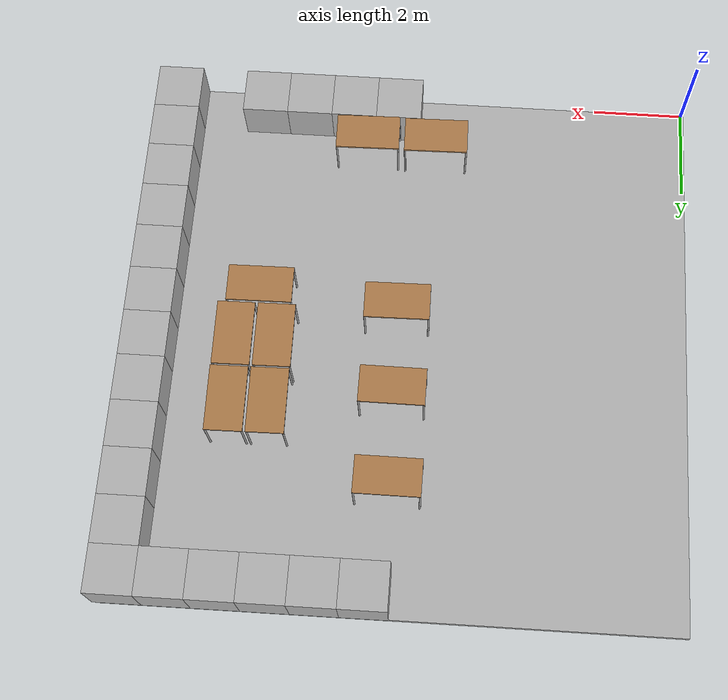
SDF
<sdf version="1.6">
 <world name="default">
  <model name="floor">
   <pose>5.94261 5.9862 -0.0625 0 -0 0</pose>
   <static>1</static>
   <link name="link">
    <collision name="collision"><geometry><box><size>12 12 0.125</size></box></geometry></collision>
    <visual name="visual"><geometry><box><size>12 12 0.125</size></box></geometry></visual>
   </link>
  </model>
  <model name="box_6_0">
   <pose>6.5 0.5 0.5 0 -0 0</pose>
   <static>1</static>
   <link name="link">
    <collision name="collision"><geometry><box><size>1 1 1</size></box></geometry></collision>
    <visual name="visual"><geometry><box><size>1 1 1</size></box></geometry></visual>
   </link>
  </model>
  <model name="box_6_11">
   <pose>6.5 11.5 0.5 0 -0 0</pose>
   <static>1</static>
   <link name="link">
    <collision name="collision"><geometry><box><size>1 1 1</size></box></geometry></collision>
    <visual name="visual"><geometry><box><size>1 1 1</size></box></geometry></visual>
   </link>
  </model>
  <model name="box_7_0">
   <pose>7.5 0.5 0.5 0 -0 0</pose>
   <static>1</static>
   <link name="link">
    <collision name="collision"><geometry><box><size>1 1 1</size></box></geometry></collision>
    <visual name="visual"><geometry><box><size>1 1 1</size></box></geometry></visual>
   </link>
  </model>
  <model name="box_7_11">
   <pose>7.5 11.5 0.5 0 -0 0</pose>
   <static>1</static>
   <link name="link">
    <collision name="collision"><geometry><box><size>1 1 1</size></box></geometry></collision>
    <visual name="visual"><geometry><box><size>1 1 1</size></box></geometry></visual>
   </link>
  </model>
  <model name="box_8_0">
   <pose>8.5 0.5 0.5 0 -0 0</pose>
   <static>1</static>
   <link name="link">
    <collision name="collision"><geometry><box><size>1 1 1</size></box></geometry></collision>
    <visual name="visual"><geometry><box><size>1 1 1</size></box></geometry></visual>
   </link>
  </model>
  <model name="box_8_11">
   <pose>8.5 11.5 0.5 0 -0 0</pose>
   <static>1</static>
   <link name="link">
    <collision name="collision"><geometry><box><size>1 1 1</size></box></geometry></collision>
    <visual name="visual"><geometry><box><size>1 1 1</size></box></geometry></visual>
   </link>
  </model>
  <model name="box_9_0">
   <pose>9.5 0.5 0.5 0 -0 0</pose>
   <static>1</static>
   <link name="link">
    <collision name="collision"><geometry><box><size>1 1 1</size></box></geometry></collision>
    <visual name="visual"><geometry><box><size>1 1 1</size></box></geometry></visual>
   </link>
  </model>
  <model name="box_9_11">
   <pose>9.5 11.5 0.5 0 -0 0</pose>
   <static>1</static>
   <link name="link">
    <collision name="collision"><geometry><box><size>1 1 1</size></box></geometry></collision>
    <visual name="visual"><geometry><box><size>1 1 1</size></box></geometry></visual>
   </link>
  </model>
  <model name="box_10_11">
   <pose>10.5 11.5 0.5 0 -0 0</pose>
   <static>1</static>
   <link name="link">
    <collision name="collision"><geometry><box><size>1 1 1</size></box></geometry></collision>
    <visual name="visual"><geometry><box><size>1 1 1</size></box></geometry></visual>
   </link>
  </model>
  <model name="box_11_0">
   <pose>11.5 0.5 0.5 0 -0 0</pose>
   <static>1</static>
   <link name="link">
    <collision name="collision"><geometry><box><size>1 1 1</size></box></geometry></collision>
    <visual name="visual"><geometry><box><size>1 1 1</size></box></geometry></visual>
   </link>
  </model>
  <model name="box_11_1">
   <pose>11.5 1.5 0.5 0 -0 0</pose>
   <static>1</static>
   <link name="link">
    <collision name="collision"><geometry><box><size>1 1 1</size></box></geometry></collision>
    <visual name="visual"><geometry><box><size>1 1 1</size></box></geometry></visual>
   </link>
  </model>
  <model name="box_11_2">
   <pose>11.5 2.5 0.5 0 -0 0</pose>
   <static>1</static>
   <link name="link">
    <collision name="collision"><geometry><box><size>1 1 1</size></box></geometry></collision>
    <visual name="visual"><geometry><box><size>1 1 1</size></box></geometry></visual>
   </link>
  </model>
  <model name="box_11_3">
   <pose>11.5 3.5 0.5 0 -0 0</pose>
   <static>1</static>
   <link name="link">
    <collision name="collision"><geometry><box><size>1 1 1</size></box></geometry></collision>
    <visual name="visual"><geometry><box><size>1 1 1</size></box></geometry></visual>
   </link>
  </model>
  <model name="box_11_4">
   <pose>11.5 4.5 0.5 0 -0 0</pose>
   <static>1</static>
   <link name="link">
    <collision name="collision"><geometry><box><size>1 1 1</size></box></geometry></collision>
    <visual name="visual"><geometry><box><size>1 1 1</size></box></geometry></visual>
   </link>
  </model>
  <model name="box_11_5">
   <pose>11.5 5.5 0.5 0 -0 0</pose>
   <static>1</static>
   <link name="link">
    <collision name="collision"><geometry><box><size>1 1 1</size></box></geometry></collision>
    <visual name="visual"><geometry><box><size>1 1 1</size></box></geometry></visual>
   </link>
  </model>
  <model name="box_11_6">
   <pose>11.5 6.5 0.5 0 -0 0</pose>
   <static>1</static>
   <link name="link">
    <collision name="collision"><geometry><box><size>1 1 1</size></box></geometry></collision>
    <visual name="visual"><geometry><box><size>1 1 1</size></box></geometry></visual>
   </link>
  </model>
  <model name="box_11_7">
   <pose>11.5 7.5 0.5 0 -0 0</pose>
   <static>1</static>
   <link name="link">
    <collision name="collision"><geometry><box><size>1 1 1</size></box></geometry></collision>
    <visual name="visual"><geometry><box><size>1 1 1</size></box></geometry></visual>
   </link>
  </model>
  <model name="box_11_8">
   <pose>11.5 8.5 0.5 0 -0 0</pose>
   <static>1</static>
   <link name="link">
    <collision name="collision"><geometry><box><size>1 1 1</size></box></geometry></collision>
    <visual name="visual"><geometry><box><size>1 1 1</size></box></geometry></visual>
   </link>
  </model>
  <model name="box_11_9">
   <pose>11.5 9.5 0.5 0 -0 0</pose>
   <static>1</static>
   <link name="link">
    <collision name="collision"><geometry><box><size>1 1 1</size></box></geometry></collision>
    <visual name="visual"><geometry><box><size>1 1 1</size></box></geometry></visual>
   </link>
  </model>
  <model name="box_11_10">
   <pose>11.5 10.5 0.5 0 -0 0</pose>
   <static>1</static>
   <link name="link">
    <collision name="collision"><geometry><box><size>1 1 1</size></box></geometry></collision>
    <visual name="visual"><geometry><box><size>1 1 1</size></box></geometry></visual>
   </link>
  </model>
  <model name="box_11_11">
   <pose>11.5 11.5 0.5 0 -0 0</pose>
   <static>1</static>
   <link name="link">
    <collision name="collision"><geometry><box><size>1 1 1</size></box></geometry></collision>
    <visual name="visual"><geometry><box><size>1 1 1</size></box></geometry></visual>
   </link>
  </model>
  <model name="table">
   <static>0</static>
   <link name="link">
    <collision name="surface">
     <pose>0 0 1 0 -0 0</pose>
     <geometry><box><size>1.5 0.8 0.03</size></box></geometry>
     <surface><friction><ode><mu>0.6</mu><mu2>0.6</mu2></ode></friction></surface>
    </collision>
    <visual name="visual1">
     <pose>0 0 1 0 -0 0</pose>
     <geometry><box><size>1.4 0.8 0.04</size></box></geometry>
     <material>
      <script><uri>file://media/materials/scripts/gazebo.material</uri><name>Gazebo/Wood</name></script>
     </material>
    </visual>
    <collision name="front_left_leg">
     <pose>0.68 0.38 0.5 0 -0 0</pose>
     <geometry><cylinder><radius>0.02</radius><length>1</length></cylinder></geometry>
    </collision>
    <visual name="front_left_leg">
     <pose>0.68 0.38 0.5 0 -0 0</pose>
     <geometry><cylinder><radius>0.02</radius><length>1</length></cylinder></geometry>
     <material>
      <script><uri>file://media/materials/scripts/gazebo.material</uri><name>Gazebo/Grey</name></script>
     </material>
    </visual>
    <collision name="front_right_leg">
     <pose>0.68 -0.38 0.5 0 -0 0</pose>
     <geometry><cylinder><radius>0.02</radius><length>1</length></cylinder></geometry>
    </collision>
    <visual name="front_right_leg">
     <pose>0.68 -0.38 0.5 0 -0 0</pose>
     <geometry><cylinder><radius>0.02</radius><length>1</length></cylinder></geometry>
     <material>
      <script><uri>file://media/materials/scripts/gazebo.material</uri><name>Gazebo/Grey</name></script>
     </material>
    </visual>
    <collision name="back_right_leg">
     <pose>-0.68 -0.38 0.5 0 -0 0</pose>
     <geometry><cylinder><radius>0.02</radius><length>1</length></cylinder></geometry>
    </collision>
    <visual name="back_right_leg">
     <pose>-0.68 -0.38 0.5 0 -0 0</pose>
     <geometry><cylinder><radius>0.02</radius><length>1</length></cylinder></geometry>
     <material>
      <script><uri>file://media/materials/scripts/gazebo.material</uri><name>Gazebo/Grey</name></script>
     </material>
    </visual>
    <collision name="back_left_leg">
     <pose>-0.68 0.38 0.5 0 -0 0</pose>
     <geometry><cylinder><radius>0.02</radius><length>1</length></cylinder></geometry>
    </collision>
    <visual name="back_left_leg">
     <pose>-0.68 0.38 0.5 0 -0 0</pose>
     <geometry><cylinder><radius>0.02</radius><length>1</length></cylinder></geometry>
     <material>
      <script><uri>file://media/materials/scripts/gazebo.material</uri><name>Gazebo/Grey</name></script>
     </material>
    </visual>
    <inertial>
     <inertia><ixx>1</ixx><ixy>0</ixy><ixz>0</ixz><iyy>1</iyy><iyz>0</iyz><izz>1</izz></inertia>
     <mass>1</mass>
    </inertial>
   </link>
   <pose>9.1788 5.23214 -5e-06 1e-06 -0 0.010262</pose>
  </model>
  <model name="table_0">
   <static>0</static>
   <link name="link">
    <collision name="surface">
     <pose>0 0 1 0 -0 0</pose>
     <geometry><box><size>1.5 0.8 0.03</size></box></geometry>
     <surface><friction><ode><mu>0.6</mu><mu2>0.6</mu2></ode></friction></surface>
    </collision>
    <visual name="visual1">
     <pose>0 0 1 0 -0 0</pose>
     <geometry><box><size>1.4 0.8 0.04</size></box></geometry>
     <material>
      <script><uri>file://media/materials/scripts/gazebo.material</uri><name>Gazebo/Wood</name></script>
     </material>
    </visual>
    <collision name="front_left_leg">
     <pose>0.68 0.38 0.5 0 -0 0</pose>
     <geometry><cylinder><radius>0.02</radius><length>1</length></cylinder></geometry>
    </collision>
    <visual name="front_left_leg">
     <pose>0.68 0.38 0.5 0 -0 0</pose>
     <geometry><cylinder><radius>0.02</radius><length>1</length></cylinder></geometry>
     <material>
      <script><uri>file://media/materials/scripts/gazebo.material</uri><name>Gazebo/Grey</name></script>
     </material>
    </visual>
    <collision name="front_right_leg">
     <pose>0.68 -0.38 0.5 0 -0 0</pose>
     <geometry><cylinder><radius>0.02</radius><length>1</length></cylinder></geometry>
    </collision>
    <visual name="front_right_leg">
     <pose>0.68 -0.38 0.5 0 -0 0</pose>
     <geometry><cylinder><radius>0.02</radius><length>1</length></cylinder></geometry>
     <material>
      <script><uri>file://media/materials/scripts/gazebo.material</uri><name>Gazebo/Grey</name></script>
     </material>
    </visual>
    <collision name="back_right_leg">
     <pose>-0.68 -0.38 0.5 0 -0 0</pose>
     <geometry><cylinder><radius>0.02</radius><length>1</length></cylinder></geometry>
    </collision>
    <visual name="back_right_leg">
     <pose>-0.68 -0.38 0.5 0 -0 0</pose>
     <geometry><cylinder><radius>0.02</radius><length>1</length></cylinder></geometry>
     <material>
      <script><uri>file://media/materials/scripts/gazebo.material</uri><name>Gazebo/Grey</name></script>
     </material>
    </visual>
    <collision name="back_left_leg">
     <pose>-0.68 0.38 0.5 0 -0 0</pose>
     <geometry><cylinder><radius>0.02</radius><length>1</length></cylinder></geometry>
    </collision>
    <visual name="back_left_leg">
     <pose>-0.68 0.38 0.5 0 -0 0</pose>
     <geometry><cylinder><radius>0.02</radius><length>1</length></cylinder></geometry>
     <material>
      <script><uri>file://media/materials/scripts/gazebo.material</uri><name>Gazebo/Grey</name></script>
     </material>
    </visual>
    <inertial>
     <inertia><ixx>1</ixx><ixy>0</ixy><ixz>0</ixz><iyy>1</iyy><iyz>0</iyz><izz>1</izz></inertia>
     <mass>1</mass>
    </inertial>
   </link>
   <pose>9.62627 6.3868 -9e-06 0 -1e-06 -1.56053</pose>
  </model>
  <model name="table_0_clone">
   <static>0</static>
   <link name="link">
    <collision name="surface">
     <pose>0 0 1 0 -0 0</pose>
     <geometry><box><size>1.5 0.8 0.03</size></box></geometry>
     <surface><friction><ode><mu>0.6</mu><mu2>0.6</mu2></ode></friction></surface>
    </collision>
    <visual name="visual1">
     <pose>0 0 1 0 -0 0</pose>
     <geometry><box><size>1.4 0.8 0.04</size></box></geometry>
     <material>
      <script><uri>file://media/materials/scripts/gazebo.material</uri><name>Gazebo/Wood</name></script>
     </material>
    </visual>
    <collision name="front_left_leg">
     <pose>0.68 0.38 0.5 0 -0 0</pose>
     <geometry><cylinder><radius>0.02</radius><length>1</length></cylinder></geometry>
    </collision>
    <visual name="front_left_leg">
     <pose>0.68 0.38 0.5 0 -0 0</pose>
     <geometry><cylinder><radius>0.02</radius><length>1</length></cylinder></geometry>
     <material>
      <script><uri>file://media/materials/scripts/gazebo.material</uri><name>Gazebo/Grey</name></script>
     </material>
    </visual>
    <collision name="front_right_leg">
     <pose>0.68 -0.38 0.5 0 -0 0</pose>
     <geometry><cylinder><radius>0.02</radius><length>1</length></cylinder></geometry>
    </collision>
    <visual name="front_right_leg">
     <pose>0.68 -0.38 0.5 0 -0 0</pose>
     <geometry><cylinder><radius>0.02</radius><length>1</length></cylinder></geometry>
     <material>
      <script><uri>file://media/materials/scripts/gazebo.material</uri><name>Gazebo/Grey</name></script>
     </material>
    </visual>
    <collision name="back_right_leg">
     <pose>-0.68 -0.38 0.5 0 -0 0</pose>
     <geometry><cylinder><radius>0.02</radius><length>1</length></cylinder></geometry>
    </collision>
    <visual name="back_right_leg">
     <pose>-0.68 -0.38 0.5 0 -0 0</pose>
     <geometry><cylinder><radius>0.02</radius><length>1</length></cylinder></geometry>
     <material>
      <script><uri>file://media/materials/scripts/gazebo.material</uri><name>Gazebo/Grey</name></script>
     </material>
    </visual>
    <collision name="back_left_leg">
     <pose>-0.68 0.38 0.5 0 -0 0</pose>
     <geometry><cylinder><radius>0.02</radius><length>1</length></cylinder></geometry>
    </collision>
    <visual name="back_left_leg">
     <pose>-0.68 0.38 0.5 0 -0 0</pose>
     <geometry><cylinder><radius>0.02</radius><length>1</length></cylinder></geometry>
     <material>
      <script><uri>file://media/materials/scripts/gazebo.material</uri><name>Gazebo/Grey</name></script>
     </material>
    </visual>
    <inertial>
     <inertia><ixx>1</ixx><ixy>0</ixy><ixz>0</ixz><iyy>1</iyy><iyz>0</iyz><izz>1</izz></inertia>
     <mass>1</mass>
    </inertial>
   </link>
   <pose>8.76764 6.37799 -2e-06 0 -4e-06 -1.56053</pose>
  </model>
  <model name="table_0_clone_clone">
   <static>0</static>
   <link name="link">
    <collision name="surface">
     <pose>0 0 1 0 -0 0</pose>
     <geometry><box><size>1.5 0.8 0.03</size></box></geometry>
     <surface><friction><ode><mu>0.6</mu><mu2>0.6</mu2></ode></friction></surface>
    </collision>
    <visual name="visual1">
     <pose>0 0 1 0 -0 0</pose>
     <geometry><box><size>1.4 0.8 0.04</size></box></geometry>
     <material>
      <script><uri>file://media/materials/scripts/gazebo.material</uri><name>Gazebo/Wood</name></script>
     </material>
    </visual>
    <collision name="front_left_leg">
     <pose>0.68 0.38 0.5 0 -0 0</pose>
     <geometry><cylinder><radius>0.02</radius><length>1</length></cylinder></geometry>
    </collision>
    <visual name="front_left_leg">
     <pose>0.68 0.38 0.5 0 -0 0</pose>
     <geometry><cylinder><radius>0.02</radius><length>1</length></cylinder></geometry>
     <material>
      <script><uri>file://media/materials/scripts/gazebo.material</uri><name>Gazebo/Grey</name></script>
     </material>
    </visual>
    <collision name="front_right_leg">
     <pose>0.68 -0.38 0.5 0 -0 0</pose>
     <geometry><cylinder><radius>0.02</radius><length>1</length></cylinder></geometry>
    </collision>
    <visual name="front_right_leg">
     <pose>0.68 -0.38 0.5 0 -0 0</pose>
     <geometry><cylinder><radius>0.02</radius><length>1</length></cylinder></geometry>
     <material>
      <script><uri>file://media/materials/scripts/gazebo.material</uri><name>Gazebo/Grey</name></script>
     </material>
    </visual>
    <collision name="back_right_leg">
     <pose>-0.68 -0.38 0.5 0 -0 0</pose>
     <geometry><cylinder><radius>0.02</radius><length>1</length></cylinder></geometry>
    </collision>
    <visual name="back_right_leg">
     <pose>-0.68 -0.38 0.5 0 -0 0</pose>
     <geometry><cylinder><radius>0.02</radius><length>1</length></cylinder></geometry>
     <material>
      <script><uri>file://media/materials/scripts/gazebo.material</uri><name>Gazebo/Grey</name></script>
     </material>
    </visual>
    <collision name="back_left_leg">
     <pose>-0.68 0.38 0.5 0 -0 0</pose>
     <geometry><cylinder><radius>0.02</radius><length>1</length></cylinder></geometry>
    </collision>
    <visual name="back_left_leg">
     <pose>-0.68 0.38 0.5 0 -0 0</pose>
     <geometry><cylinder><radius>0.02</radius><length>1</length></cylinder></geometry>
     <material>
      <script><uri>file://media/materials/scripts/gazebo.material</uri><name>Gazebo/Grey</name></script>
     </material>
    </visual>
    <inertial>
     <inertia><ixx>1</ixx><ixy>0</ixy><ixz>0</ixz><iyy>1</iyy><iyz>0</iyz><izz>1</izz></inertia>
     <mass>1</mass>
    </inertial>
   </link>
   <pose>9.61817 7.81602 0.015107 -0 -0.021585 -1.56053</pose>
  </model>
  <model name="table_0_clone_clone_0">
   <static>0</static>
   <link name="link">
    <collision name="surface">
     <pose>0 0 1 0 -0 0</pose>
     <geometry><box><size>1.5 0.8 0.03</size></box></geometry>
     <surface><friction><ode><mu>0.6</mu><mu2>0.6</mu2></ode></friction></surface>
    </collision>
    <visual name="visual1">
     <pose>0 0 1 0 -0 0</pose>
     <geometry><box><size>1.4 0.8 0.04</size></box></geometry>
     <material>
      <script><uri>file://media/materials/scripts/gazebo.material</uri><name>Gazebo/Wood</name></script>
     </material>
    </visual>
    <collision name="front_left_leg">
     <pose>0.68 0.38 0.5 0 -0 0</pose>
     <geometry><cylinder><radius>0.02</radius><length>1</length></cylinder></geometry>
    </collision>
    <visual name="front_left_leg">
     <pose>0.68 0.38 0.5 0 -0 0</pose>
     <geometry><cylinder><radius>0.02</radius><length>1</length></cylinder></geometry>
     <material>
      <script><uri>file://media/materials/scripts/gazebo.material</uri><name>Gazebo/Grey</name></script>
     </material>
    </visual>
    <collision name="front_right_leg">
     <pose>0.68 -0.38 0.5 0 -0 0</pose>
     <geometry><cylinder><radius>0.02</radius><length>1</length></cylinder></geometry>
    </collision>
    <visual name="front_right_leg">
     <pose>0.68 -0.38 0.5 0 -0 0</pose>
     <geometry><cylinder><radius>0.02</radius><length>1</length></cylinder></geometry>
     <material>
      <script><uri>file://media/materials/scripts/gazebo.material</uri><name>Gazebo/Grey</name></script>
     </material>
    </visual>
    <collision name="back_right_leg">
     <pose>-0.68 -0.38 0.5 0 -0 0</pose>
     <geometry><cylinder><radius>0.02</radius><length>1</length></cylinder></geometry>
    </collision>
    <visual name="back_right_leg">
     <pose>-0.68 -0.38 0.5 0 -0 0</pose>
     <geometry><cylinder><radius>0.02</radius><length>1</length></cylinder></geometry>
     <material>
      <script><uri>file://media/materials/scripts/gazebo.material</uri><name>Gazebo/Grey</name></script>
     </material>
    </visual>
    <collision name="back_left_leg">
     <pose>-0.68 0.38 0.5 0 -0 0</pose>
     <geometry><cylinder><radius>0.02</radius><length>1</length></cylinder></geometry>
    </collision>
    <visual name="back_left_leg">
     <pose>-0.68 0.38 0.5 0 -0 0</pose>
     <geometry><cylinder><radius>0.02</radius><length>1</length></cylinder></geometry>
     <material>
      <script><uri>file://media/materials/scripts/gazebo.material</uri><name>Gazebo/Grey</name></script>
     </material>
    </visual>
    <inertial>
     <inertia><ixx>1</ixx><ixy>0</ixy><ixz>0</ixz><iyy>1</iyy><iyz>0</iyz><izz>1</izz></inertia>
     <mass>1</mass>
    </inertial>
   </link>
   <pose>8.7633 7.80725 0.015106 -1e-06 -0.021581 -1.56054</pose>
  </model>
  <model name="table_clone">
   <static>0</static>
   <link name="link">
    <collision name="surface">
     <pose>0 0 1 0 -0 0</pose>
     <geometry><box><size>1.5 0.8 0.03</size></box></geometry>
     <surface><friction><ode><mu>0.6</mu><mu2>0.6</mu2></ode></friction></surface>
    </collision>
    <visual name="visual1">
     <pose>0 0 1 0 -0 0</pose>
     <geometry><box><size>1.4 0.8 0.04</size></box></geometry>
     <material>
      <script><uri>file://media/materials/scripts/gazebo.material</uri><name>Gazebo/Wood</name></script>
     </material>
    </visual>
    <collision name="front_left_leg">
     <pose>0.68 0.38 0.5 0 -0 0</pose>
     <geometry><cylinder><radius>0.02</radius><length>1</length></cylinder></geometry>
    </collision>
    <visual name="front_left_leg">
     <pose>0.68 0.38 0.5 0 -0 0</pose>
     <geometry><cylinder><radius>0.02</radius><length>1</length></cylinder></geometry>
     <material>
      <script><uri>file://media/materials/scripts/gazebo.material</uri><name>Gazebo/Grey</name></script>
     </material>
    </visual>
    <collision name="front_right_leg">
     <pose>0.68 -0.38 0.5 0 -0 0</pose>
     <geometry><cylinder><radius>0.02</radius><length>1</length></cylinder></geometry>
    </collision>
    <visual name="front_right_leg">
     <pose>0.68 -0.38 0.5 0 -0 0</pose>
     <geometry><cylinder><radius>0.02</radius><length>1</length></cylinder></geometry>
     <material>
      <script><uri>file://media/materials/scripts/gazebo.material</uri><name>Gazebo/Grey</name></script>
     </material>
    </visual>
    <collision name="back_right_leg">
     <pose>-0.68 -0.38 0.5 0 -0 0</pose>
     <geometry><cylinder><radius>0.02</radius><length>1</length></cylinder></geometry>
    </collision>
    <visual name="back_right_leg">
     <pose>-0.68 -0.38 0.5 0 -0 0</pose>
     <geometry><cylinder><radius>0.02</radius><length>1</length></cylinder></geometry>
     <material>
      <script><uri>file://media/materials/scripts/gazebo.material</uri><name>Gazebo/Grey</name></script>
     </material>
    </visual>
    <collision name="back_left_leg">
     <pose>-0.68 0.38 0.5 0 -0 0</pose>
     <geometry><cylinder><radius>0.02</radius><length>1</length></cylinder></geometry>
    </collision>
    <visual name="back_left_leg">
     <pose>-0.68 0.38 0.5 0 -0 0</pose>
     <geometry><cylinder><radius>0.02</radius><length>1</length></cylinder></geometry>
     <material>
      <script><uri>file://media/materials/scripts/gazebo.material</uri><name>Gazebo/Grey</name></script>
     </material>
    </visual>
    <inertial>
     <inertia><ixx>1</ixx><ixy>0</ixy><ixz>0</ixz><iyy>1</iyy><iyz>0</iyz><izz>1</izz></inertia>
     <mass>1</mass>
    </inertial>
   </link>
   <pose>6.23597 5.44554 -9e-06 0 -0 0.012441</pose>
  </model>
  <model name="table_clone_0_clone_0">
   <static>0</static>
   <link name="link">
    <collision name="surface">
     <pose>0 0 1 0 -0 0</pose>
     <geometry><box><size>1.5 0.8 0.03</size></box></geometry>
     <surface><friction><ode><mu>0.6</mu><mu2>0.6</mu2></ode></friction></surface>
    </collision>
    <visual name="visual1">
     <pose>0 0 1 0 -0 0</pose>
     <geometry><box><size>1.4 0.8 0.04</size></box></geometry>
     <material>
      <script><uri>file://media/materials/scripts/gazebo.material</uri><name>Gazebo/Wood</name></script>
     </material>
    </visual>
    <collision name="front_left_leg">
     <pose>0.68 0.38 0.5 0 -0 0</pose>
     <geometry><cylinder><radius>0.02</radius><length>1</length></cylinder></geometry>
    </collision>
    <visual name="front_left_leg">
     <pose>0.68 0.38 0.5 0 -0 0</pose>
     <geometry><cylinder><radius>0.02</radius><length>1</length></cylinder></geometry>
     <material>
      <script><uri>file://media/materials/scripts/gazebo.material</uri><name>Gazebo/Grey</name></script>
     </material>
    </visual>
    <collision name="front_right_leg">
     <pose>0.68 -0.38 0.5 0 -0 0</pose>
     <geometry><cylinder><radius>0.02</radius><length>1</length></cylinder></geometry>
    </collision>
    <visual name="front_right_leg">
     <pose>0.68 -0.38 0.5 0 -0 0</pose>
     <geometry><cylinder><radius>0.02</radius><length>1</length></cylinder></geometry>
     <material>
      <script><uri>file://media/materials/scripts/gazebo.material</uri><name>Gazebo/Grey</name></script>
     </material>
    </visual>
    <collision name="back_right_leg">
     <pose>-0.68 -0.38 0.5 0 -0 0</pose>
     <geometry><cylinder><radius>0.02</radius><length>1</length></cylinder></geometry>
    </collision>
    <visual name="back_right_leg">
     <pose>-0.68 -0.38 0.5 0 -0 0</pose>
     <geometry><cylinder><radius>0.02</radius><length>1</length></cylinder></geometry>
     <material>
      <script><uri>file://media/materials/scripts/gazebo.material</uri><name>Gazebo/Grey</name></script>
     </material>
    </visual>
    <collision name="back_left_leg">
     <pose>-0.68 0.38 0.5 0 -0 0</pose>
     <geometry><cylinder><radius>0.02</radius><length>1</length></cylinder></geometry>
    </collision>
    <visual name="back_left_leg">
     <pose>-0.68 0.38 0.5 0 -0 0</pose>
     <geometry><cylinder><radius>0.02</radius><length>1</length></cylinder></geometry>
     <material>
      <script><uri>file://media/materials/scripts/gazebo.material</uri><name>Gazebo/Grey</name></script>
     </material>
    </visual>
    <inertial>
     <inertia><ixx>1</ixx><ixy>0</ixy><ixz>0</ixz><iyy>1</iyy><iyz>0</iyz><izz>1</izz></inertia>
     <mass>1</mass>
    </inertial>
   </link>
   <pose>6.21494 7.34049 -1e-06 0 0 -0.005891</pose>
  </model>
  <model name="table_clone_0_clone_2">
   <static>0</static>
   <link name="link">
    <collision name="surface">
     <pose>0 0 1 0 -0 0</pose>
     <geometry><box><size>1.5 0.8 0.03</size></box></geometry>
     <surface><friction><ode><mu>0.6</mu><mu2>0.6</mu2></ode></friction></surface>
    </collision>
    <visual name="visual1">
     <pose>0 0 1 0 -0 0</pose>
     <geometry><box><size>1.4 0.8 0.04</size></box></geometry>
     <material>
      <script><uri>file://media/materials/scripts/gazebo.material</uri><name>Gazebo/Wood</name></script>
     </material>
    </visual>
    <collision name="front_left_leg">
     <pose>0.68 0.38 0.5 0 -0 0</pose>
     <geometry><cylinder><radius>0.02</radius><length>1</length></cylinder></geometry>
    </collision>
    <visual name="front_left_leg">
     <pose>0.68 0.38 0.5 0 -0 0</pose>
     <geometry><cylinder><radius>0.02</radius><length>1</length></cylinder></geometry>
     <material>
      <script><uri>file://media/materials/scripts/gazebo.material</uri><name>Gazebo/Grey</name></script>
     </material>
    </visual>
    <collision name="front_right_leg">
     <pose>0.68 -0.38 0.5 0 -0 0</pose>
     <geometry><cylinder><radius>0.02</radius><length>1</length></cylinder></geometry>
    </collision>
    <visual name="front_right_leg">
     <pose>0.68 -0.38 0.5 0 -0 0</pose>
     <geometry><cylinder><radius>0.02</radius><length>1</length></cylinder></geometry>
     <material>
      <script><uri>file://media/materials/scripts/gazebo.material</uri><name>Gazebo/Grey</name></script>
     </material>
    </visual>
    <collision name="back_right_leg">
     <pose>-0.68 -0.38 0.5 0 -0 0</pose>
     <geometry><cylinder><radius>0.02</radius><length>1</length></cylinder></geometry>
    </collision>
    <visual name="back_right_leg">
     <pose>-0.68 -0.38 0.5 0 -0 0</pose>
     <geometry><cylinder><radius>0.02</radius><length>1</length></cylinder></geometry>
     <material>
      <script><uri>file://media/materials/scripts/gazebo.material</uri><name>Gazebo/Grey</name></script>
     </material>
    </visual>
    <collision name="back_left_leg">
     <pose>-0.68 0.38 0.5 0 -0 0</pose>
     <geometry><cylinder><radius>0.02</radius><length>1</length></cylinder></geometry>
    </collision>
    <visual name="back_left_leg">
     <pose>-0.68 0.38 0.5 0 -0 0</pose>
     <geometry><cylinder><radius>0.02</radius><length>1</length></cylinder></geometry>
     <material>
      <script><uri>file://media/materials/scripts/gazebo.material</uri><name>Gazebo/Grey</name></script>
     </material>
    </visual>
    <inertial>
     <inertia><ixx>1</ixx><ixy>0</ixy><ixz>0</ixz><iyy>1</iyy><iyz>0</iyz><izz>1</izz></inertia>
     <mass>1</mass>
    </inertial>
   </link>
   <pose>6.1813 9.27746 -1e-06 0 0 -0.004743</pose>
  </model>
  <model name="table_clone_0_clone_clone_1">
   <static>0</static>
   <link name="link">
    <collision name="surface">
     <pose>0 0 1 0 -0 0</pose>
     <geometry><box><size>1.5 0.8 0.03</size></box></geometry>
     <surface><friction><ode><mu>0.6</mu><mu2>0.6</mu2></ode></friction></surface>
    </collision>
    <visual name="visual1">
     <pose>0 0 1 0 -0 0</pose>
     <geometry><box><size>1.4 0.8 0.04</size></box></geometry>
     <material>
      <script><uri>file://media/materials/scripts/gazebo.material</uri><name>Gazebo/Wood</name></script>
     </material>
    </visual>
    <collision name="front_left_leg">
     <pose>0.68 0.38 0.5 0 -0 0</pose>
     <geometry><cylinder><radius>0.02</radius><length>1</length></cylinder></geometry>
    </collision>
    <visual name="front_left_leg">
     <pose>0.68 0.38 0.5 0 -0 0</pose>
     <geometry><cylinder><radius>0.02</radius><length>1</length></cylinder></geometry>
     <material>
      <script><uri>file://media/materials/scripts/gazebo.material</uri><name>Gazebo/Grey</name></script>
     </material>
    </visual>
    <collision name="front_right_leg">
     <pose>0.68 -0.38 0.5 0 -0 0</pose>
     <geometry><cylinder><radius>0.02</radius><length>1</length></cylinder></geometry>
    </collision>
    <visual name="front_right_leg">
     <pose>0.68 -0.38 0.5 0 -0 0</pose>
     <geometry><cylinder><radius>0.02</radius><length>1</length></cylinder></geometry>
     <material>
      <script><uri>file://media/materials/scripts/gazebo.material</uri><name>Gazebo/Grey</name></script>
     </material>
    </visual>
    <collision name="back_right_leg">
     <pose>-0.68 -0.38 0.5 0 -0 0</pose>
     <geometry><cylinder><radius>0.02</radius><length>1</length></cylinder></geometry>
    </collision>
    <visual name="back_right_leg">
     <pose>-0.68 -0.38 0.5 0 -0 0</pose>
     <geometry><cylinder><radius>0.02</radius><length>1</length></cylinder></geometry>
     <material>
      <script><uri>file://media/materials/scripts/gazebo.material</uri><name>Gazebo/Grey</name></script>
     </material>
    </visual>
    <collision name="back_left_leg">
     <pose>-0.68 0.38 0.5 0 -0 0</pose>
     <geometry><cylinder><radius>0.02</radius><length>1</length></cylinder></geometry>
    </collision>
    <visual name="back_left_leg">
     <pose>-0.68 0.38 0.5 0 -0 0</pose>
     <geometry><cylinder><radius>0.02</radius><length>1</length></cylinder></geometry>
     <material>
      <script><uri>file://media/materials/scripts/gazebo.material</uri><name>Gazebo/Grey</name></script>
     </material>
    </visual>
    <inertial>
     <inertia><ixx>1</ixx><ixy>0</ixy><ixz>0</ixz><iyy>1</iyy><iyz>0</iyz><izz>1</izz></inertia>
     <mass>1</mass>
    </inertial>
   </link>
   <pose>5.63202 1.41157 -4e-06 1e-06 -4e-06 0.015492</pose>
  </model>
  <model name="table_clone_0_clone_clone_2">
   <static>0</static>
   <link name="link">
    <collision name="surface">
     <pose>0 0 1 0 -0 0</pose>
     <geometry><box><size>1.5 0.8 0.03</size></box></geometry>
     <surface><friction><ode><mu>0.6</mu><mu2>0.6</mu2></ode></friction></surface>
    </collision>
    <visual name="visual1">
     <pose>0 0 1 0 -0 0</pose>
     <geometry><box><size>1.4 0.8 0.04</size></box></geometry>
     <material>
      <script><uri>file://media/materials/scripts/gazebo.material</uri><name>Gazebo/Wood</name></script>
     </material>
    </visual>
    <collision name="front_left_leg">
     <pose>0.68 0.38 0.5 0 -0 0</pose>
     <geometry><cylinder><radius>0.02</radius><length>1</length></cylinder></geometry>
    </collision>
    <visual name="front_left_leg">
     <pose>0.68 0.38 0.5 0 -0 0</pose>
     <geometry><cylinder><radius>0.02</radius><length>1</length></cylinder></geometry>
     <material>
      <script><uri>file://media/materials/scripts/gazebo.material</uri><name>Gazebo/Grey</name></script>
     </material>
    </visual>
    <collision name="front_right_leg">
     <pose>0.68 -0.38 0.5 0 -0 0</pose>
     <geometry><cylinder><radius>0.02</radius><length>1</length></cylinder></geometry>
    </collision>
    <visual name="front_right_leg">
     <pose>0.68 -0.38 0.5 0 -0 0</pose>
     <geometry><cylinder><radius>0.02</radius><length>1</length></cylinder></geometry>
     <material>
      <script><uri>file://media/materials/scripts/gazebo.material</uri><name>Gazebo/Grey</name></script>
     </material>
    </visual>
    <collision name="back_right_leg">
     <pose>-0.68 -0.38 0.5 0 -0 0</pose>
     <geometry><cylinder><radius>0.02</radius><length>1</length></cylinder></geometry>
    </collision>
    <visual name="back_right_leg">
     <pose>-0.68 -0.38 0.5 0 -0 0</pose>
     <geometry><cylinder><radius>0.02</radius><length>1</length></cylinder></geometry>
     <material>
      <script><uri>file://media/materials/scripts/gazebo.material</uri><name>Gazebo/Grey</name></script>
     </material>
    </visual>
    <collision name="back_left_leg">
     <pose>-0.68 0.38 0.5 0 -0 0</pose>
     <geometry><cylinder><radius>0.02</radius><length>1</length></cylinder></geometry>
    </collision>
    <visual name="back_left_leg">
     <pose>-0.68 0.38 0.5 0 -0 0</pose>
     <geometry><cylinder><radius>0.02</radius><length>1</length></cylinder></geometry>
     <material>
      <script><uri>file://media/materials/scripts/gazebo.material</uri><name>Gazebo/Grey</name></script>
     </material>
    </visual>
    <inertial>
     <inertia><ixx>1</ixx><ixy>0</ixy><ixz>0</ixz><iyy>1</iyy><iyz>0</iyz><izz>1</izz></inertia>
     <mass>1</mass>
    </inertial>
   </link>
   <pose>7.14978 1.4174 0 0 -0 0.016887</pose>
  </model>
 </world>
</sdf>
